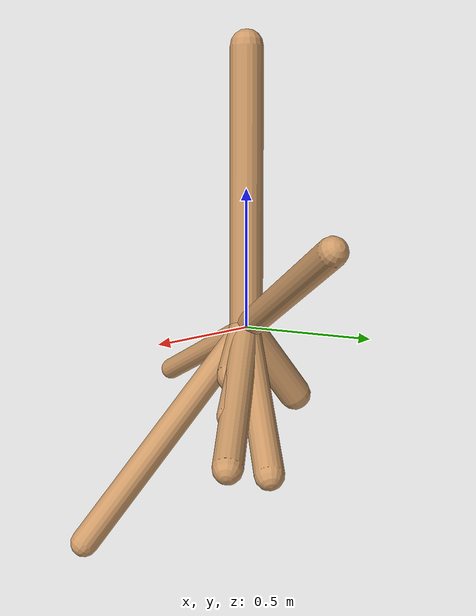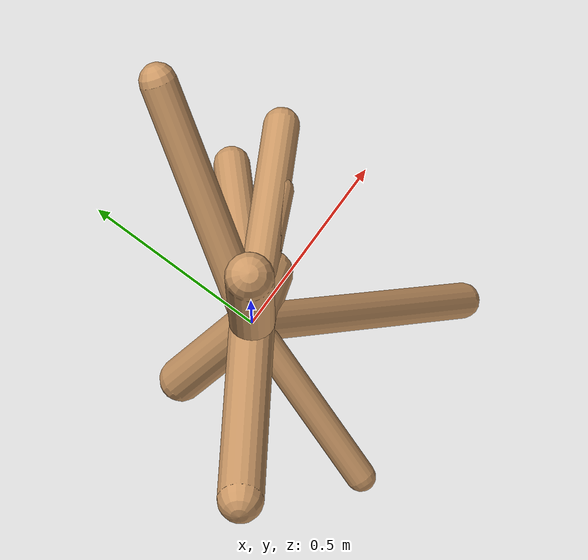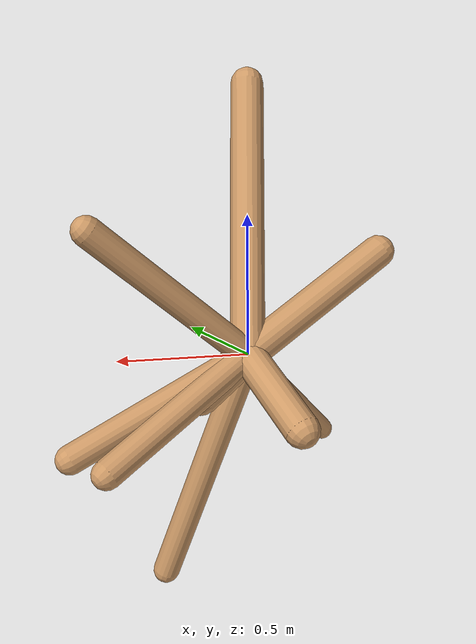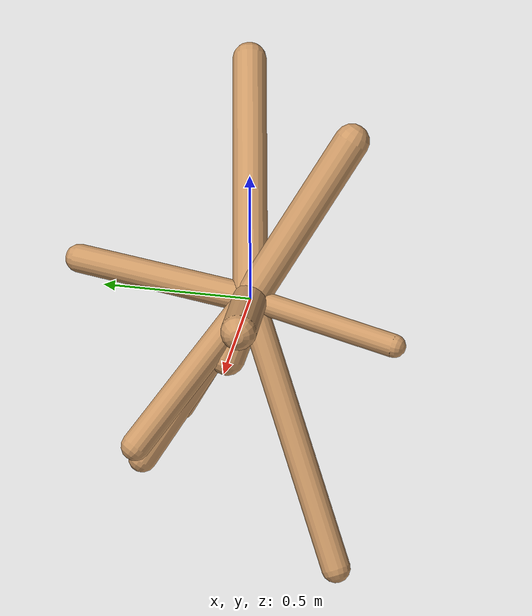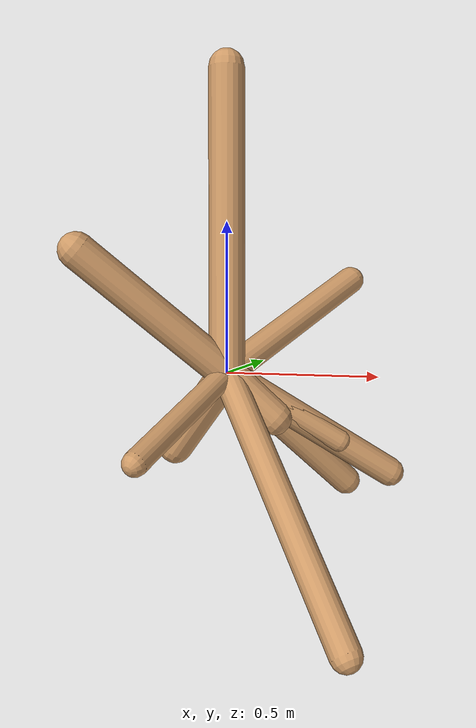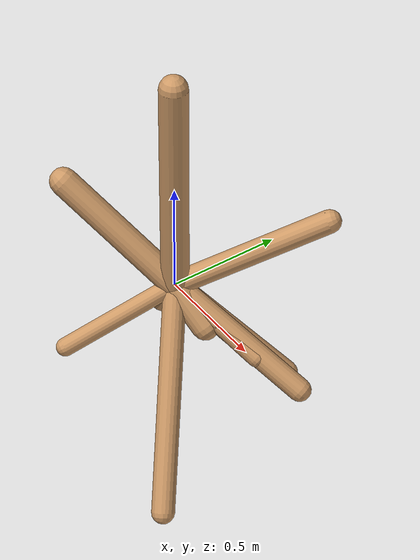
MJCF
<!--
                    joint_number: 9
                    -->
                    <mujoco model="randomrobot">
                        <compiler angle="degree" coordinate="global" inertiafromgeom="true"/>
                        <default>
                        <joint armature="0.01" damping=".1" limited="true"/>
                        <geom conaffinity="0" condim="3" contype="1" density="1000" friction="0.8 .1 .1" rgba="0.8 0.6 .4 1"/>
                        </default>
                        <option integrator="RK4" timestep="0.002"/>
                        <worldbody>
                    <body name='torso' pos='0.00 0.00 1.18'><geom fromto='0 0 0 0.00 0.00 1.00' name='torso_geom' size='0.06' type='capsule'/><inertial mass='0.3'/><body name='L0_D1' pos='0.00 0.00 0.10'><joint axis='0 1 0' name='L0_D1_joint' pos='0 0 0' range='145.19 176.89' type='hinge'/><geom fromto='0 0 0 -0.14 -0.46 -0.22' name='L0_D1_geom' size='0.04' type='capsule'/><inertial mass='0.3'/></body><body name='L1_D1' pos='0.00 0.00 0.60'><joint axis='1 0 0' name='L1_D1_joint' pos='0 0 0' range='84.53 156.08' type='hinge'/><geom fromto='0 0 0 0.33 0.54 0.31' name='L1_D1_geom' size='0.05' type='capsule'/><inertial mass='0.3'/><body name='L2_D0' pos='0.23 0.37 0.21'><joint axis='1 0 0' name='L2_D0_joint' pos='0 0 0' range='48.33 135.03' type='hinge'/><geom fromto='0 0 0 -0.41 -0.27 0.40' name='L2_D0_geom' size='0.06' type='capsule'/><inertial mass='0.3'/></body><body name='L3_D0' pos='0.27 0.44 0.26'><joint axis='0 0 1' name='L3_D0_joint' pos='0 0 0' range='10.07 143.89' type='hinge'/><geom fromto='0 0 0 -0.21 0.08 -0.27' name='L3_D0_geom' size='0.06' type='capsule'/><inertial mass='0.3'/></body><body name='L4_D0' pos='0.16 0.27 0.15'><joint axis='0 0 1' name='L4_D0_joint' pos='0 0 0' range='11.39 75.99' type='hinge'/><geom fromto='0 0 0 0.15 0.05 -0.15' name='L4_D0_geom' size='0.06' type='capsule'/><inertial mass='0.3'/></body></body><body name='L5_D1' pos='0.00 0.00 0.86'><joint axis='1 0 0' name='L5_D1_joint' pos='0 0 0' range='59.96 121.61' type='hinge'/><geom fromto='0 0 0 0.35 0.33 -0.41' name='L5_D1_geom' size='0.05' type='capsule'/><inertial mass='0.3'/></body><body name='L6_D1' pos='0.00 0.00 0.17'><joint axis='1 0 0' name='L6_D1_joint' pos='0 0 0' range='135.29 177.26' type='hinge'/><geom fromto='0 0 0 0.46 -0.38 -0.75' name='L6_D1_geom' size='0.05' type='capsule'/><inertial mass='0.3'/><body name='L7_D0' pos='0.14 -0.12 -0.23'><joint axis='0 0 1' name='L7_D0_joint' pos='0 0 0' range='16.77 85.88' type='hinge'/><geom fromto='0 0 0 0.51 0.28 -0.36' name='L7_D0_geom' size='0.05' type='capsule'/><inertial mass='0.3'/></body><body name='L8_D0' pos='0.01 -0.01 -0.02'><joint axis='0 1 0' name='L8_D0_joint' pos='0 0 0' range='157.54 166.95' type='hinge'/><geom fromto='0 0 0 0.35 0.17 -0.24' name='L8_D0_geom' size='0.04' type='capsule'/><inertial mass='0.3'/></body></body></body>
                        </worldbody>
                    </mujoco>
